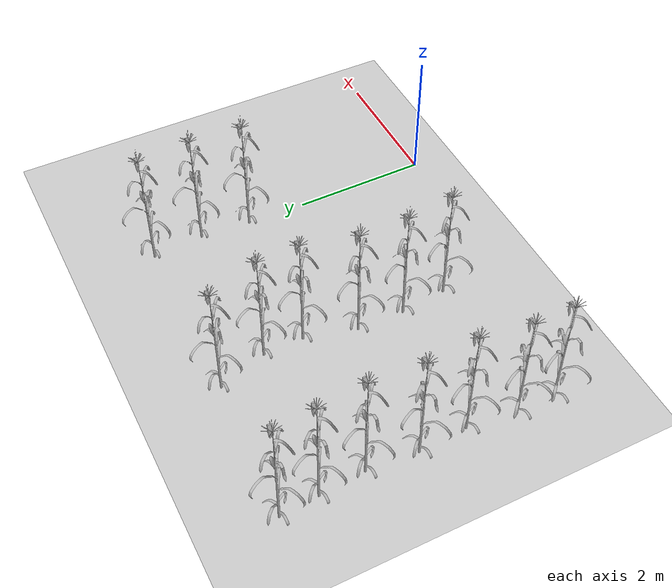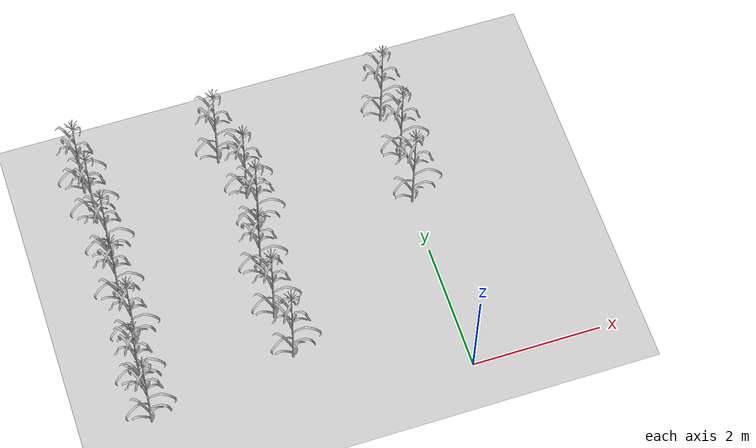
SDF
<sdf version="1.6">
 <world name="default">
  <model name="ground_plane">
   <static>1</static>
   <link name="link">
    <collision name="collision">
     <geometry><plane><normal>0 0 1</normal><size>100 100</size></plane></geometry>
     <surface>
      <contact><collide_bitmask>65535</collide_bitmask></contact>
      <friction><ode><mu>100</mu><mu2>50</mu2></ode></friction>
     </surface>
    </collision>
    <visual name="visual">
     <cast_shadows>0</cast_shadows>
     <geometry><plane><normal>0 0 1</normal><size>100 100</size></plane></geometry>
     <material>
      <script><uri>file://media/materials/scripts/gazebo.material</uri><name>Gazebo/Grey</name></script>
     </material>
    </visual>
   </link>
  </model>
  <model name="corn_stalk2_clone_7">
   <static>1</static>
   <link name="corn_stalk2_link">
    <collision name="collision">
     <geometry><mesh><scale>1 1 1</scale><uri>model://corn_type2/meshes/model.stl</uri></mesh></geometry>
    </collision>
    <visual name="corn_stalk2_visual">
     <geometry><mesh><uri>model://corn_type2/meshes/model.stl</uri><scale>1 1 1</scale></mesh></geometry>
     <material>
      <script>
       <uri>model://corn_type2/materials/scripts</uri>
       <uri>model://corn_type2/materials/textures</uri>
       <name>corn_type2/Diffuse</name>
      </script>
     </material>
    </visual>
   </link>
   <pose>0.024928 2.88442 0 0 -0 0</pose>
  </model>
  <model name="corn_stalk2_clone_8">
   <static>1</static>
   <link name="corn_stalk2_link">
    <collision name="collision">
     <geometry><mesh><scale>1 1 1</scale><uri>model://corn_type2/meshes/model.stl</uri></mesh></geometry>
    </collision>
    <visual name="corn_stalk2_visual">
     <geometry><mesh><uri>model://corn_type2/meshes/model.stl</uri><scale>1 1 1</scale></mesh></geometry>
     <material>
      <script>
       <uri>model://corn_type2/materials/scripts</uri>
       <uri>model://corn_type2/materials/textures</uri>
       <name>corn_type2/Diffuse</name>
      </script>
     </material>
    </visual>
   </link>
   <pose>0.080068 3.64268 0 0 -0 0</pose>
  </model>
  <model name="corn_stalk2_clone_40">
   <static>1</static>
   <link name="corn_stalk2_link">
    <collision name="collision">
     <geometry><mesh><scale>1 1 1</scale><uri>model://corn_type2/meshes/model.stl</uri></mesh></geometry>
    </collision>
    <visual name="corn_stalk2_visual">
     <geometry><mesh><uri>model://corn_type2/meshes/model.stl</uri><scale>1 1 1</scale></mesh></geometry>
     <material>
      <script>
       <uri>model://corn_type2/materials/scripts</uri>
       <uri>model://corn_type2/materials/textures</uri>
       <name>corn_type2/Diffuse</name>
      </script>
     </material>
    </visual>
   </link>
   <pose>-2.4893 0.940936 0 0 -0 0</pose>
  </model>
  <model name="corn_stalk2_clone_41">
   <static>1</static>
   <link name="corn_stalk2_link">
    <collision name="collision">
     <geometry><mesh><scale>1 1 1</scale><uri>model://corn_type2/meshes/model.stl</uri></mesh></geometry>
    </collision>
    <visual name="corn_stalk2_visual">
     <geometry><mesh><uri>model://corn_type2/meshes/model.stl</uri><scale>1 1 1</scale></mesh></geometry>
     <material>
      <script>
       <uri>model://corn_type2/materials/scripts</uri>
       <uri>model://corn_type2/materials/textures</uri>
       <name>corn_type2/Diffuse</name>
      </script>
     </material>
    </visual>
   </link>
   <pose>-2.56831 1.64592 0 0 -0 0</pose>
  </model>
  <model name="corn_stalk2_clone_42">
   <static>1</static>
   <link name="corn_stalk2_link">
    <collision name="collision">
     <geometry><mesh><scale>1 1 1</scale><uri>model://corn_type2/meshes/model.stl</uri></mesh></geometry>
    </collision>
    <visual name="corn_stalk2_visual">
     <geometry><mesh><uri>model://corn_type2/meshes/model.stl</uri><scale>1 1 1</scale></mesh></geometry>
     <material>
      <script>
       <uri>model://corn_type2/materials/scripts</uri>
       <uri>model://corn_type2/materials/textures</uri>
       <name>corn_type2/Diffuse</name>
      </script>
     </material>
    </visual>
   </link>
   <pose>-2.55489 2.3542 0 0 -0 0</pose>
  </model>
  <model name="corn_stalk2_clone_43">
   <static>1</static>
   <link name="corn_stalk2_link">
    <collision name="collision">
     <geometry><mesh><scale>1 1 1</scale><uri>model://corn_type2/meshes/model.stl</uri></mesh></geometry>
    </collision>
    <visual name="corn_stalk2_visual">
     <geometry><mesh><uri>model://corn_type2/meshes/model.stl</uri><scale>1 1 1</scale></mesh></geometry>
     <material>
      <script>
       <uri>model://corn_type2/materials/scripts</uri>
       <uri>model://corn_type2/materials/textures</uri>
       <name>corn_type2/Diffuse</name>
      </script>
     </material>
    </visual>
   </link>
   <pose>-2.35944 3.11834 0 0 -0 0</pose>
  </model>
  <model name="corn_stalk2_clone_44">
   <static>1</static>
   <link name="corn_stalk2_link">
    <collision name="collision">
     <geometry><mesh><scale>1 1 1</scale><uri>model://corn_type2/meshes/model.stl</uri></mesh></geometry>
    </collision>
    <visual name="corn_stalk2_visual">
     <geometry><mesh><uri>model://corn_type2/meshes/model.stl</uri><scale>1 1 1</scale></mesh></geometry>
     <material>
      <script>
       <uri>model://corn_type2/materials/scripts</uri>
       <uri>model://corn_type2/materials/textures</uri>
       <name>corn_type2/Diffuse</name>
      </script>
     </material>
    </visual>
   </link>
   <pose>-2.3698 3.71874 0 0 -0 0</pose>
  </model>
  <model name="corn_stalk2_clone_50">
   <static>1</static>
   <link name="corn_stalk2_link">
    <collision name="collision">
     <geometry><mesh><scale>1 1 1</scale><uri>model://corn_type2/meshes/model.stl</uri></mesh></geometry>
    </collision>
    <visual name="corn_stalk2_visual">
     <geometry><mesh><uri>model://corn_type2/meshes/model.stl</uri><scale>1 1 1</scale></mesh></geometry>
     <material>
      <script>
       <uri>model://corn_type2/materials/scripts</uri>
       <uri>model://corn_type2/materials/textures</uri>
       <name>corn_type2/Diffuse</name>
      </script>
     </material>
    </visual>
   </link>
   <pose>-4.7644 0.575356 0 0 -0 0</pose>
  </model>
  <model name="corn_stalk2_clone_51">
   <static>1</static>
   <link name="corn_stalk2_link">
    <collision name="collision">
     <geometry><mesh><scale>1 1 1</scale><uri>model://corn_type2/meshes/model.stl</uri></mesh></geometry>
    </collision>
    <visual name="corn_stalk2_visual">
     <geometry><mesh><uri>model://corn_type2/meshes/model.stl</uri><scale>1 1 1</scale></mesh></geometry>
     <material>
      <script>
       <uri>model://corn_type2/materials/scripts</uri>
       <uri>model://corn_type2/materials/textures</uri>
       <name>corn_type2/Diffuse</name>
      </script>
     </material>
    </visual>
   </link>
   <pose>-4.7601 1.15087 0 0 -0 0</pose>
  </model>
  <model name="corn_stalk2_clone_52">
   <static>1</static>
   <link name="corn_stalk2_link">
    <collision name="collision">
     <geometry><mesh><scale>1 1 1</scale><uri>model://corn_type2/meshes/model.stl</uri></mesh></geometry>
    </collision>
    <visual name="corn_stalk2_visual">
     <geometry><mesh><uri>model://corn_type2/meshes/model.stl</uri><scale>1 1 1</scale></mesh></geometry>
     <material>
      <script>
       <uri>model://corn_type2/materials/scripts</uri>
       <uri>model://corn_type2/materials/textures</uri>
       <name>corn_type2/Diffuse</name>
      </script>
     </material>
    </visual>
   </link>
   <pose>-4.64616 1.85552 0 0 -0 0</pose>
  </model>
  <model name="corn_stalk2_clone_53">
   <static>1</static>
   <link name="corn_stalk2_link">
    <collision name="collision">
     <geometry><mesh><scale>1 1 1</scale><uri>model://corn_type2/meshes/model.stl</uri></mesh></geometry>
    </collision>
    <visual name="corn_stalk2_visual">
     <geometry><mesh><uri>model://corn_type2/meshes/model.stl</uri><scale>1 1 1</scale></mesh></geometry>
     <material>
      <script>
       <uri>model://corn_type2/materials/scripts</uri>
       <uri>model://corn_type2/materials/textures</uri>
       <name>corn_type2/Diffuse</name>
      </script>
     </material>
    </visual>
   </link>
   <pose>-4.68743 2.58007 0 0 -0 0</pose>
  </model>
  <model name="corn_stalk2_clone_54">
   <static>1</static>
   <link name="corn_stalk2_link">
    <collision name="collision">
     <geometry><mesh><scale>1 1 1</scale><uri>model://corn_type2/meshes/model.stl</uri></mesh></geometry>
    </collision>
    <visual name="corn_stalk2_visual">
     <geometry><mesh><uri>model://corn_type2/meshes/model.stl</uri><scale>1 1 1</scale></mesh></geometry>
     <material>
      <script>
       <uri>model://corn_type2/materials/scripts</uri>
       <uri>model://corn_type2/materials/textures</uri>
       <name>corn_type2/Diffuse</name>
      </script>
     </material>
    </visual>
   </link>
   <pose>-4.62619 3.3279 0 0 -0 0</pose>
  </model>
  <model name="corn_stalk2_clone_55">
   <static>1</static>
   <link name="corn_stalk2_link">
    <collision name="collision">
     <geometry><mesh><scale>1 1 1</scale><uri>model://corn_type2/meshes/model.stl</uri></mesh></geometry>
    </collision>
    <visual name="corn_stalk2_visual">
     <geometry><mesh><uri>model://corn_type2/meshes/model.stl</uri><scale>1 1 1</scale></mesh></geometry>
     <material>
      <script>
       <uri>model://corn_type2/materials/scripts</uri>
       <uri>model://corn_type2/materials/textures</uri>
       <name>corn_type2/Diffuse</name>
      </script>
     </material>
    </visual>
   </link>
   <pose>-4.67757 4.00688 0 0 -0 0</pose>
  </model>
  <model name="corn_stalk2_clone_56">
   <static>1</static>
   <link name="corn_stalk2_link">
    <collision name="collision">
     <geometry><mesh><scale>1 1 1</scale><uri>model://corn_type2/meshes/model.stl</uri></mesh></geometry>
    </collision>
    <visual name="corn_stalk2_visual">
     <geometry><mesh><uri>model://corn_type2/meshes/model.stl</uri><scale>1 1 1</scale></mesh></geometry>
     <material>
      <script>
       <uri>model://corn_type2/materials/scripts</uri>
       <uri>model://corn_type2/materials/textures</uri>
       <name>corn_type2/Diffuse</name>
      </script>
     </material>
    </visual>
   </link>
   <pose>-4.71994 4.56979 0 0 -0 0</pose>
  </model>
  <model name="corn_stalk2_clone_57">
   <static>1</static>
   <link name="corn_stalk2_link">
    <collision name="collision">
     <geometry><mesh><scale>1 1 1</scale><uri>model://corn_type2/meshes/model.stl</uri></mesh></geometry>
    </collision>
    <visual name="corn_stalk2_visual">
     <geometry><mesh><uri>model://corn_type2/meshes/model.stl</uri><scale>1 1 1</scale></mesh></geometry>
     <material>
      <script>
       <uri>model://corn_type2/materials/scripts</uri>
       <uri>model://corn_type2/materials/textures</uri>
       <name>corn_type2/Diffuse</name>
      </script>
     </material>
    </visual>
   </link>
   <pose>-2.61265 4.454 0 0 -0 0</pose>
  </model>
  <model name="corn_stalk2_clone_58">
   <static>1</static>
   <link name="corn_stalk2_link">
    <collision name="collision">
     <geometry><mesh><scale>1 1 1</scale><uri>model://corn_type2/meshes/model.stl</uri></mesh></geometry>
    </collision>
    <visual name="corn_stalk2_visual">
     <geometry><mesh><uri>model://corn_type2/meshes/model.stl</uri><scale>1 1 1</scale></mesh></geometry>
     <material>
      <script>
       <uri>model://corn_type2/materials/scripts</uri>
       <uri>model://corn_type2/materials/textures</uri>
       <name>corn_type2/Diffuse</name>
      </script>
     </material>
    </visual>
   </link>
   <pose>0.017513 4.41514 0 0 -0 0</pose>
  </model>
 </world>
</sdf>
